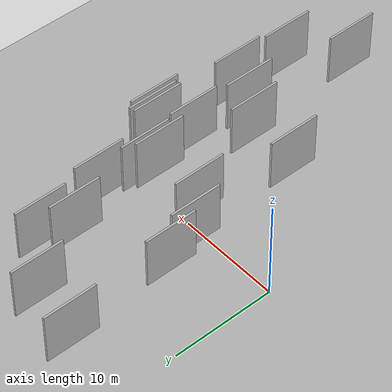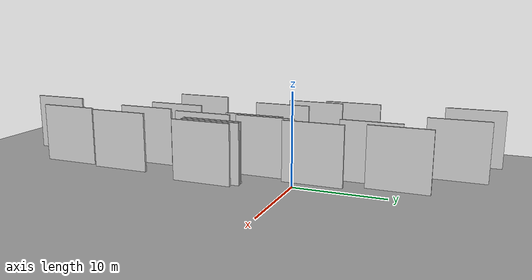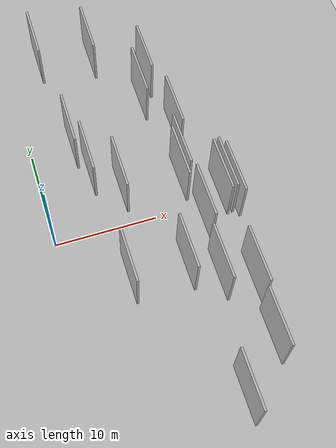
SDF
<?xml version="1.0" encoding="utf-8"?>

<sdf version="1.6">

   <world name="default">

      <gui fullscreen="0">

         <camera name="user_camera">

            <pose>-15 0 4.57585 0 0 0</pose>

            <view_controller>orbit</view_controller>

         </camera>

      </gui>

      <scene>

         <sky>

           <clouds>

             <speed>12</speed>

           </clouds>

         </sky>

         <ambient>0.4 0.4 0.4 1</ambient>

         <background>0.7 0.7 0.7 1</background>

         <shadows>1</shadows>

      </scene>

      <gravity>0 0 -9.8066</gravity>

      <magnetic_field>6e-06 2.3e-05 -4.2e-05</magnetic_field>

      <physics default="0" name="default_physics" type="ode">

         <ode>

            <solver>

               <type>quick</type>

               <iters>10</iters>

               <sor>1.0</sor>

               <use_dynamic_moi_rescaling>0</use_dynamic_moi_rescaling>

            </solver>

            <constraints>

               <cfm>0</cfm>

               <erp>0.2</erp>

               <contact_max_correcting_vel>100</contact_max_correcting_vel>

               <contact_surface_layer>0.001</contact_surface_layer>

            </constraints>

         </ode>

         <max_step_size>0.004</max_step_size>

         <real_time_factor>1</real_time_factor>

         <real_time_update_rate>250</real_time_update_rate>

      </physics>

      <light name="sun" type="directional">

         <cast_shadows>1</cast_shadows>

         <pose>0 0 10 0 0 0</pose>

         <diffuse>0.8 0.8 0.8 1</diffuse>

         <specular>0.2 0.2 0.2 1</specular>

         <attenuation>

            <range>1000</range>

            <constant>0.9</constant>

            <linear>0.01</linear>

            <quadratic>0.001</quadratic>

         </attenuation>

         <direction>-0.5 0.1 -0.9</direction>

      </light>

      <include>

         <name>ground_plane_1</name>

         <uri>model://HANNAS_ground_plane</uri>

         <pose>0 0 0  0 0 0</pose>

      </include>

      <include>

         <name>ground_plane_2</name>

         <uri>model://HANNAS_ground_plane</uri>

         <pose>100 0 0  0 0 0</pose>

      </include>

      <model name="HANNAS_wall_1">

         <static>1</static>

         <pose frame="">15.3775 -10.1875 5.0 0.000000 0.000000 1.570796</pose>

         <link name="link">

            <pose frame="">0 0 2.50 0 0 0</pose>

            <collision name="collision">

               <geometry>

                  <box>

                     <size>5.00 0.2 5.00</size>

                  </box>

               </geometry>

               <max_contacts>10</max_contacts>

               <surface>

                  <contact>

                     <ode/>

                  </contact>

                  <bounce/>

                  <friction>

                     <torsional>

                        <ode/>

                     </torsional>

                     <ode/>

                  </friction>

               </surface>

            </collision>

            <visual name="visual">

               <cast_shadows>0</cast_shadows>

               <geometry>

                  <box>

                     <size>5.00 0.2 5.00</size>

                  </box>

               </geometry>

               <material>

                  <script>

                     <uri>model://HANNAS_wall/materials/scripts</uri>

                     <uri>model://HANNAS_wall/materials/textures</uri>

                     <name>vrc/HANNAS_wall</name>

                  </script>

               </material>

            </visual>

            <self_collide>0</self_collide>

            <enable_wind>0</enable_wind>

            <kinematic>0</kinematic>

         </link>

      </model>

      <model name="HANNAS_wall_2">

         <static>1</static>

         <pose frame="">16.4148 -1.9081 5.0 0.000000 0.000000 1.570796</pose>

         <link name="link">

            <pose frame="">0 0 2.50 0 0 0</pose>

            <collision name="collision">

               <geometry>

                  <box>

                     <size>5.00 0.2 5.00</size>

                  </box>

               </geometry>

               <max_contacts>10</max_contacts>

               <surface>

                  <contact>

                     <ode/>

                  </contact>

                  <bounce/>

                  <friction>

                     <torsional>

                        <ode/>

                     </torsional>

                     <ode/>

                  </friction>

               </surface>

            </collision>

            <visual name="visual">

               <cast_shadows>0</cast_shadows>

               <geometry>

                  <box>

                     <size>5.00 0.2 5.00</size>

                  </box>

               </geometry>

               <material>

                  <script>

                     <uri>model://HANNAS_wall/materials/scripts</uri>

                     <uri>model://HANNAS_wall/materials/textures</uri>

                     <name>vrc/HANNAS_wall</name>

                  </script>

               </material>

            </visual>

            <self_collide>0</self_collide>

            <enable_wind>0</enable_wind>

            <kinematic>0</kinematic>

         </link>

      </model>

      <model name="HANNAS_wall_3">

         <static>1</static>

         <pose frame="">15.4398 -1.4060 5.0 0.000000 0.000000 1.570796</pose>

         <link name="link">

            <pose frame="">0 0 2.50 0 0 0</pose>

            <collision name="collision">

               <geometry>

                  <box>

                     <size>5.00 0.2 5.00</size>

                  </box>

               </geometry>

               <max_contacts>10</max_contacts>

               <surface>

                  <contact>

                     <ode/>

                  </contact>

                  <bounce/>

                  <friction>

                     <torsional>

                        <ode/>

                     </torsional>

                     <ode/>

                  </friction>

               </surface>

            </collision>

            <visual name="visual">

               <cast_shadows>0</cast_shadows>

               <geometry>

                  <box>

                     <size>5.00 0.2 5.00</size>

                  </box>

               </geometry>

               <material>

                  <script>

                     <uri>model://HANNAS_wall/materials/scripts</uri>

                     <uri>model://HANNAS_wall/materials/textures</uri>

                     <name>vrc/HANNAS_wall</name>

                  </script>

               </material>

            </visual>

            <self_collide>0</self_collide>

            <enable_wind>0</enable_wind>

            <kinematic>0</kinematic>

         </link>

      </model>

      <model name="HANNAS_wall_4">

         <static>1</static>

         <pose frame="">11.1931 -19.5328 5.0 0.000000 0.000000 1.570796</pose>

         <link name="link">

            <pose frame="">0 0 2.50 0 0 0</pose>

            <collision name="collision">

               <geometry>

                  <box>

                     <size>5.00 0.2 5.00</size>

                  </box>

               </geometry>

               <max_contacts>10</max_contacts>

               <surface>

                  <contact>

                     <ode/>

                  </contact>

                  <bounce/>

                  <friction>

                     <torsional>

                        <ode/>

                     </torsional>

                     <ode/>

                  </friction>

               </surface>

            </collision>

            <visual name="visual">

               <cast_shadows>0</cast_shadows>

               <geometry>

                  <box>

                     <size>5.00 0.2 5.00</size>

                  </box>

               </geometry>

               <material>

                  <script>

                     <uri>model://HANNAS_wall/materials/scripts</uri>

                     <uri>model://HANNAS_wall/materials/textures</uri>

                     <name>vrc/HANNAS_wall</name>

                  </script>

               </material>

            </visual>

            <self_collide>0</self_collide>

            <enable_wind>0</enable_wind>

            <kinematic>0</kinematic>

         </link>

      </model>

      <model name="HANNAS_wall_5">

         <static>1</static>

         <pose frame="">13.1981 -3.3880 5.0 0.000000 0.000000 1.570796</pose>

         <link name="link">

            <pose frame="">0 0 2.50 0 0 0</pose>

            <collision name="collision">

               <geometry>

                  <box>

                     <size>5.00 0.2 5.00</size>

                  </box>

               </geometry>

               <max_contacts>10</max_contacts>

               <surface>

                  <contact>

                     <ode/>

                  </contact>

                  <bounce/>

                  <friction>

                     <torsional>

                        <ode/>

                     </torsional>

                     <ode/>

                  </friction>

               </surface>

            </collision>

            <visual name="visual">

               <cast_shadows>0</cast_shadows>

               <geometry>

                  <box>

                     <size>5.00 0.2 5.00</size>

                  </box>

               </geometry>

               <material>

                  <script>

                     <uri>model://HANNAS_wall/materials/scripts</uri>

                     <uri>model://HANNAS_wall/materials/textures</uri>

                     <name>vrc/HANNAS_wall</name>

                  </script>

               </material>

            </visual>

            <self_collide>0</self_collide>

            <enable_wind>0</enable_wind>

            <kinematic>0</kinematic>

         </link>

      </model>

      <model name="HANNAS_wall_6">

         <static>1</static>

         <pose frame="">4.6609 3.8503 5.0 0.000000 0.000000 1.570796</pose>

         <link name="link">

            <pose frame="">0 0 2.50 0 0 0</pose>

            <collision name="collision">

               <geometry>

                  <box>

                     <size>5.00 0.2 5.00</size>

                  </box>

               </geometry>

               <max_contacts>10</max_contacts>

               <surface>

                  <contact>

                     <ode/>

                  </contact>

                  <bounce/>

                  <friction>

                     <torsional>

                        <ode/>

                     </torsional>

                     <ode/>

                  </friction>

               </surface>

            </collision>

            <visual name="visual">

               <cast_shadows>0</cast_shadows>

               <geometry>

                  <box>

                     <size>5.00 0.2 5.00</size>

                  </box>

               </geometry>

               <material>

                  <script>

                     <uri>model://HANNAS_wall/materials/scripts</uri>

                     <uri>model://HANNAS_wall/materials/textures</uri>

                     <name>vrc/HANNAS_wall</name>

                  </script>

               </material>

            </visual>

            <self_collide>0</self_collide>

            <enable_wind>0</enable_wind>

            <kinematic>0</kinematic>

         </link>

      </model>

      <model name="HANNAS_wall_7">

         <static>1</static>

         <pose frame="">3.0656 17.5782 5.0 0.000000 0.000000 1.570796</pose>

         <link name="link">

            <pose frame="">0 0 2.50 0 0 0</pose>

            <collision name="collision">

               <geometry>

                  <box>

                     <size>5.00 0.2 5.00</size>

                  </box>

               </geometry>

               <max_contacts>10</max_contacts>

               <surface>

                  <contact>

                     <ode/>

                  </contact>

                  <bounce/>

                  <friction>

                     <torsional>

                        <ode/>

                     </torsional>

                     <ode/>

                  </friction>

               </surface>

            </collision>

            <visual name="visual">

               <cast_shadows>0</cast_shadows>

               <geometry>

                  <box>

                     <size>5.00 0.2 5.00</size>

                  </box>

               </geometry>

               <material>

                  <script>

                     <uri>model://HANNAS_wall/materials/scripts</uri>

                     <uri>model://HANNAS_wall/materials/textures</uri>

                     <name>vrc/HANNAS_wall</name>

                  </script>

               </material>

            </visual>

            <self_collide>0</self_collide>

            <enable_wind>0</enable_wind>

            <kinematic>0</kinematic>

         </link>

      </model>

      <model name="HANNAS_wall_8">

         <static>1</static>

         <pose frame="">12.6798 -9.1281 5.0 0.000000 0.000000 1.570796</pose>

         <link name="link">

            <pose frame="">0 0 2.50 0 0 0</pose>

            <collision name="collision">

               <geometry>

                  <box>

                     <size>5.00 0.2 5.00</size>

                  </box>

               </geometry>

               <max_contacts>10</max_contacts>

               <surface>

                  <contact>

                     <ode/>

                  </contact>

                  <bounce/>

                  <friction>

                     <torsional>

                        <ode/>

                     </torsional>

                     <ode/>

                  </friction>

               </surface>

            </collision>

            <visual name="visual">

               <cast_shadows>0</cast_shadows>

               <geometry>

                  <box>

                     <size>5.00 0.2 5.00</size>

                  </box>

               </geometry>

               <material>

                  <script>

                     <uri>model://HANNAS_wall/materials/scripts</uri>

                     <uri>model://HANNAS_wall/materials/textures</uri>

                     <name>vrc/HANNAS_wall</name>

                  </script>

               </material>

            </visual>

            <self_collide>0</self_collide>

            <enable_wind>0</enable_wind>

            <kinematic>0</kinematic>

         </link>

      </model>

      <model name="HANNAS_wall_9">

         <static>1</static>

         <pose frame="">13.5523 6.3333 5.0 0.000000 0.000000 1.570796</pose>

         <link name="link">

            <pose frame="">0 0 2.50 0 0 0</pose>

            <collision name="collision">

               <geometry>

                  <box>

                     <size>5.00 0.2 5.00</size>

                  </box>

               </geometry>

               <max_contacts>10</max_contacts>

               <surface>

                  <contact>

                     <ode/>

                  </contact>

                  <bounce/>

                  <friction>

                     <torsional>

                        <ode/>

                     </torsional>

                     <ode/>

                  </friction>

               </surface>

            </collision>

            <visual name="visual">

               <cast_shadows>0</cast_shadows>

               <geometry>

                  <box>

                     <size>5.00 0.2 5.00</size>

                  </box>

               </geometry>

               <material>

                  <script>

                     <uri>model://HANNAS_wall/materials/scripts</uri>

                     <uri>model://HANNAS_wall/materials/textures</uri>

                     <name>vrc/HANNAS_wall</name>

                  </script>

               </material>

            </visual>

            <self_collide>0</self_collide>

            <enable_wind>0</enable_wind>

            <kinematic>0</kinematic>

         </link>

      </model>

      <model name="HANNAS_wall_10">

         <static>1</static>

         <pose frame="">6.9719 1.4246 5.0 0.000000 0.000000 1.570796</pose>

         <link name="link">

            <pose frame="">0 0 2.50 0 0 0</pose>

            <collision name="collision">

               <geometry>

                  <box>

                     <size>5.00 0.2 5.00</size>

                  </box>

               </geometry>

               <max_contacts>10</max_contacts>

               <surface>

                  <contact>

                     <ode/>

                  </contact>

                  <bounce/>

                  <friction>

                     <torsional>

                        <ode/>

                     </torsional>

                     <ode/>

                  </friction>

               </surface>

            </collision>

            <visual name="visual">

               <cast_shadows>0</cast_shadows>

               <geometry>

                  <box>

                     <size>5.00 0.2 5.00</size>

                  </box>

               </geometry>

               <material>

                  <script>

                     <uri>model://HANNAS_wall/materials/scripts</uri>

                     <uri>model://HANNAS_wall/materials/textures</uri>

                     <name>vrc/HANNAS_wall</name>

                  </script>

               </material>

            </visual>

            <self_collide>0</self_collide>

            <enable_wind>0</enable_wind>

            <kinematic>0</kinematic>

         </link>

      </model>

      <model name="HANNAS_wall_11">

         <static>1</static>

         <pose frame="">3.8430 7.0971 5.0 0.000000 0.000000 1.570796</pose>

         <link name="link">

            <pose frame="">0 0 2.50 0 0 0</pose>

            <collision name="collision">

               <geometry>

                  <box>

                     <size>5.00 0.2 5.00</size>

                  </box>

               </geometry>

               <max_contacts>10</max_contacts>

               <surface>

                  <contact>

                     <ode/>

                  </contact>

                  <bounce/>

                  <friction>

                     <torsional>

                        <ode/>

                     </torsional>

                     <ode/>

                  </friction>

               </surface>

            </collision>

            <visual name="visual">

               <cast_shadows>0</cast_shadows>

               <geometry>

                  <box>

                     <size>5.00 0.2 5.00</size>

                  </box>

               </geometry>

               <material>

                  <script>

                     <uri>model://HANNAS_wall/materials/scripts</uri>

                     <uri>model://HANNAS_wall/materials/textures</uri>

                     <name>vrc/HANNAS_wall</name>

                  </script>

               </material>

            </visual>

            <self_collide>0</self_collide>

            <enable_wind>0</enable_wind>

            <kinematic>0</kinematic>

         </link>

      </model>

      <model name="HANNAS_wall_12">

         <static>1</static>

         <pose frame="">15.9204 -1.3345 5.0 0.000000 0.000000 1.570796</pose>

         <link name="link">

            <pose frame="">0 0 2.50 0 0 0</pose>

            <collision name="collision">

               <geometry>

                  <box>

                     <size>5.00 0.2 5.00</size>

                  </box>

               </geometry>

               <max_contacts>10</max_contacts>

               <surface>

                  <contact>

                     <ode/>

                  </contact>

                  <bounce/>

                  <friction>

                     <torsional>

                        <ode/>

                     </torsional>

                     <ode/>

                  </friction>

               </surface>

            </collision>

            <visual name="visual">

               <cast_shadows>0</cast_shadows>

               <geometry>

                  <box>

                     <size>5.00 0.2 5.00</size>

                  </box>

               </geometry>

               <material>

                  <script>

                     <uri>model://HANNAS_wall/materials/scripts</uri>

                     <uri>model://HANNAS_wall/materials/textures</uri>

                     <name>vrc/HANNAS_wall</name>

                  </script>

               </material>

            </visual>

            <self_collide>0</self_collide>

            <enable_wind>0</enable_wind>

            <kinematic>0</kinematic>

         </link>

      </model>

      <model name="HANNAS_wall_13">

         <static>1</static>

         <pose frame="">8.1633 16.6958 5.0 0.000000 0.000000 1.570796</pose>

         <link name="link">

            <pose frame="">0 0 2.50 0 0 0</pose>

            <collision name="collision">

               <geometry>

                  <box>

                     <size>5.00 0.2 5.00</size>

                  </box>

               </geometry>

               <max_contacts>10</max_contacts>

               <surface>

                  <contact>

                     <ode/>

                  </contact>

                  <bounce/>

                  <friction>

                     <torsional>

                        <ode/>

                     </torsional>

                     <ode/>

                  </friction>

               </surface>

            </collision>

            <visual name="visual">

               <cast_shadows>0</cast_shadows>

               <geometry>

                  <box>

                     <size>5.00 0.2 5.00</size>

                  </box>

               </geometry>

               <material>

                  <script>

                     <uri>model://HANNAS_wall/materials/scripts</uri>

                     <uri>model://HANNAS_wall/materials/textures</uri>

                     <name>vrc/HANNAS_wall</name>

                  </script>

               </material>

            </visual>

            <self_collide>0</self_collide>

            <enable_wind>0</enable_wind>

            <kinematic>0</kinematic>

         </link>

      </model>

      <model name="HANNAS_wall_14">

         <static>1</static>

         <pose frame="">12.7078 12.8495 5.0 0.000000 0.000000 1.570796</pose>

         <link name="link">

            <pose frame="">0 0 2.50 0 0 0</pose>

            <collision name="collision">

               <geometry>

                  <box>

                     <size>5.00 0.2 5.00</size>

                  </box>

               </geometry>

               <max_contacts>10</max_contacts>

               <surface>

                  <contact>

                     <ode/>

                  </contact>

                  <bounce/>

                  <friction>

                     <torsional>

                        <ode/>

                     </torsional>

                     <ode/>

                  </friction>

               </surface>

            </collision>

            <visual name="visual">

               <cast_shadows>0</cast_shadows>

               <geometry>

                  <box>

                     <size>5.00 0.2 5.00</size>

                  </box>

               </geometry>

               <material>

                  <script>

                     <uri>model://HANNAS_wall/materials/scripts</uri>

                     <uri>model://HANNAS_wall/materials/textures</uri>

                     <name>vrc/HANNAS_wall</name>

                  </script>

               </material>

            </visual>

            <self_collide>0</self_collide>

            <enable_wind>0</enable_wind>

            <kinematic>0</kinematic>

         </link>

      </model>

      <model name="HANNAS_wall_15">

         <static>1</static>

         <pose frame="">15.0083 -15.5769 5.0 0.000000 0.000000 1.570796</pose>

         <link name="link">

            <pose frame="">0 0 2.50 0 0 0</pose>

            <collision name="collision">

               <geometry>

                  <box>

                     <size>5.00 0.2 5.00</size>

                  </box>

               </geometry>

               <max_contacts>10</max_contacts>

               <surface>

                  <contact>

                     <ode/>

                  </contact>

                  <bounce/>

                  <friction>

                     <torsional>

                        <ode/>

                     </torsional>

                     <ode/>

                  </friction>

               </surface>

            </collision>

            <visual name="visual">

               <cast_shadows>0</cast_shadows>

               <geometry>

                  <box>

                     <size>5.00 0.2 5.00</size>

                  </box>

               </geometry>

               <material>

                  <script>

                     <uri>model://HANNAS_wall/materials/scripts</uri>

                     <uri>model://HANNAS_wall/materials/textures</uri>

                     <name>vrc/HANNAS_wall</name>

                  </script>

               </material>

            </visual>

            <self_collide>0</self_collide>

            <enable_wind>0</enable_wind>

            <kinematic>0</kinematic>

         </link>

      </model>

      <model name="HANNAS_wall_16">

         <static>1</static>

         <pose frame="">12.8700 2.0667 5.0 0.000000 0.000000 1.570796</pose>

         <link name="link">

            <pose frame="">0 0 2.50 0 0 0</pose>

            <collision name="collision">

               <geometry>

                  <box>

                     <size>5.00 0.2 5.00</size>

                  </box>

               </geometry>

               <max_contacts>10</max_contacts>

               <surface>

                  <contact>

                     <ode/>

                  </contact>

                  <bounce/>

                  <friction>

                     <torsional>

                        <ode/>

                     </torsional>

                     <ode/>

                  </friction>

               </surface>

            </collision>

            <visual name="visual">

               <cast_shadows>0</cast_shadows>

               <geometry>

                  <box>

                     <size>5.00 0.2 5.00</size>

                  </box>

               </geometry>

               <material>

                  <script>

                     <uri>model://HANNAS_wall/materials/scripts</uri>

                     <uri>model://HANNAS_wall/materials/textures</uri>

                     <name>vrc/HANNAS_wall</name>

                  </script>

               </material>

            </visual>

            <self_collide>0</self_collide>

            <enable_wind>0</enable_wind>

            <kinematic>0</kinematic>

         </link>

      </model>

      <model name="HANNAS_wall_17">

         <static>1</static>

         <pose frame="">10.2888 -7.4507 5.0 0.000000 0.000000 1.570796</pose>

         <link name="link">

            <pose frame="">0 0 2.50 0 0 0</pose>

            <collision name="collision">

               <geometry>

                  <box>

                     <size>5.00 0.2 5.00</size>

                  </box>

               </geometry>

               <max_contacts>10</max_contacts>

               <surface>

                  <contact>

                     <ode/>

                  </contact>

                  <bounce/>

                  <friction>

                     <torsional>

                        <ode/>

                     </torsional>

                     <ode/>

                  </friction>

               </surface>

            </collision>

            <visual name="visual">

               <cast_shadows>0</cast_shadows>

               <geometry>

                  <box>

                     <size>5.00 0.2 5.00</size>

                  </box>

               </geometry>

               <material>

                  <script>

                     <uri>model://HANNAS_wall/materials/scripts</uri>

                     <uri>model://HANNAS_wall/materials/textures</uri>

                     <name>vrc/HANNAS_wall</name>

                  </script>

               </material>

            </visual>

            <self_collide>0</self_collide>

            <enable_wind>0</enable_wind>

            <kinematic>0</kinematic>

         </link>

      </model>

      <model name="HANNAS_wall_18">

         <static>1</static>

         <pose frame="">5.2598 -7.2109 5.0 0.000000 0.000000 1.570796</pose>

         <link name="link">

            <pose frame="">0 0 2.50 0 0 0</pose>

            <collision name="collision">

               <geometry>

                  <box>

                     <size>5.00 0.2 5.00</size>

                  </box>

               </geometry>

               <max_contacts>10</max_contacts>

               <surface>

                  <contact>

                     <ode/>

                  </contact>

                  <bounce/>

                  <friction>

                     <torsional>

                        <ode/>

                     </torsional>

                     <ode/>

                  </friction>

               </surface>

            </collision>

            <visual name="visual">

               <cast_shadows>0</cast_shadows>

               <geometry>

                  <box>

                     <size>5.00 0.2 5.00</size>

                  </box>

               </geometry>

               <material>

                  <script>

                     <uri>model://HANNAS_wall/materials/scripts</uri>

                     <uri>model://HANNAS_wall/materials/textures</uri>

                     <name>vrc/HANNAS_wall</name>

                  </script>

               </material>

            </visual>

            <self_collide>0</self_collide>

            <enable_wind>0</enable_wind>

            <kinematic>0</kinematic>

         </link>

      </model>

      <model name="HANNAS_wall_19">

         <static>1</static>

         <pose frame="">12.3949 0.9580 5.0 0.000000 0.000000 1.570796</pose>

         <link name="link">

            <pose frame="">0 0 2.50 0 0 0</pose>

            <collision name="collision">

               <geometry>

                  <box>

                     <size>5.00 0.2 5.00</size>

                  </box>

               </geometry>

               <max_contacts>10</max_contacts>

               <surface>

                  <contact>

                     <ode/>

                  </contact>

                  <bounce/>

                  <friction>

                     <torsional>

                        <ode/>

                     </torsional>

                     <ode/>

                  </friction>

               </surface>

            </collision>

            <visual name="visual">

               <cast_shadows>0</cast_shadows>

               <geometry>

                  <box>

                     <size>5.00 0.2 5.00</size>

                  </box>

               </geometry>

               <material>

                  <script>

                     <uri>model://HANNAS_wall/materials/scripts</uri>

                     <uri>model://HANNAS_wall/materials/textures</uri>

                     <name>vrc/HANNAS_wall</name>

                  </script>

               </material>

            </visual>

            <self_collide>0</self_collide>

            <enable_wind>0</enable_wind>

            <kinematic>0</kinematic>

         </link>

      </model>

      <model name="HANNAS_wall_20">

         <static>1</static>

         <pose frame="">11.5092 10.4126 5.0 0.000000 0.000000 1.570796</pose>

         <link name="link">

            <pose frame="">0 0 2.50 0 0 0</pose>

            <collision name="collision">

               <geometry>

                  <box>

                     <size>5.00 0.2 5.00</size>

                  </box>

               </geometry>

               <max_contacts>10</max_contacts>

               <surface>

                  <contact>

                     <ode/>

                  </contact>

                  <bounce/>

                  <friction>

                     <torsional>

                        <ode/>

                     </torsional>

                     <ode/>

                  </friction>

               </surface>

            </collision>

            <visual name="visual">

               <cast_shadows>0</cast_shadows>

               <geometry>

                  <box>

                     <size>5.00 0.2 5.00</size>

                  </box>

               </geometry>

               <material>

                  <script>

                     <uri>model://HANNAS_wall/materials/scripts</uri>

                     <uri>model://HANNAS_wall/materials/textures</uri>

                     <name>vrc/HANNAS_wall</name>

                  </script>

               </material>

            </visual>

            <self_collide>0</self_collide>

            <enable_wind>0</enable_wind>

            <kinematic>0</kinematic>

         </link>

      </model>

   </world>

</sdf>

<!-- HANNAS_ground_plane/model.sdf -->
<sdf version="1.4">
<model name="HANNAS_ground_plane">
  <static>true</static>
    <link name="link">
      <collision name="collision">
        <geometry>
          <plane>
            <normal>0 0 1</normal>
            <size>1000 1000</size>
          </plane>
        </geometry>
        <surface>
          <friction>
            <ode>
              <mu>100</mu>
              <mu2>50</mu2>
            </ode>
          </friction>
        </surface>
      </collision>
      <visual name="visual">
        <cast_shadows>false</cast_shadows>
        <geometry>
          <plane>
            <normal>0 0 1</normal>
            <size>1000 1000</size>
          </plane>
        </geometry>
        <material>
          <script>
            <uri>model://HANNAS_ground_plane/materials/scripts/HANNAS_ground_plane.material</uri>
	    <uri>model://HANNAS_ground_plane/materials/textures</uri>
            <name>HANNASGroundPlane/Image</name>
          </script>
        </material>
      </visual>
    </link>
  </model>
</sdf>
